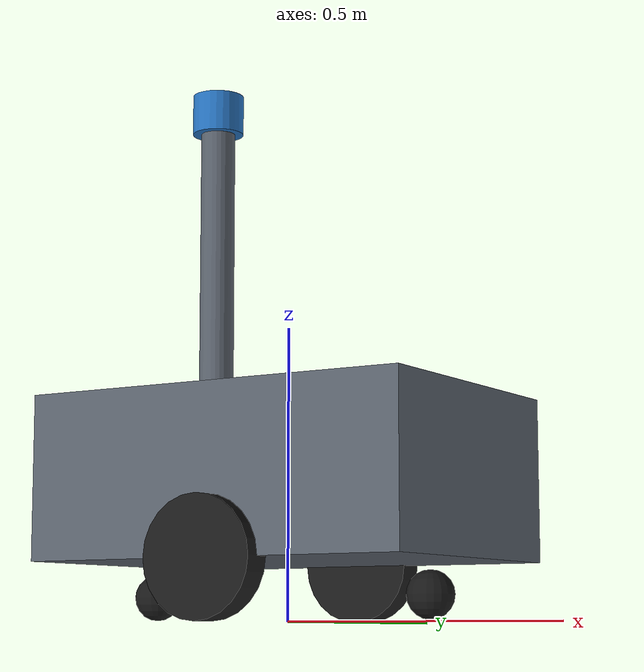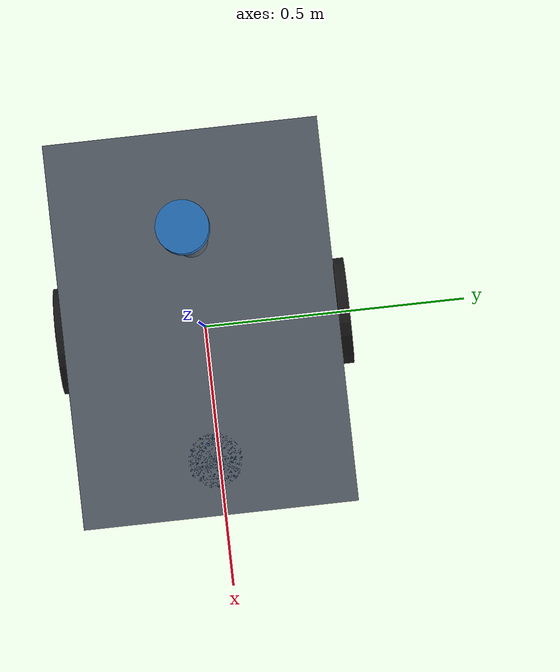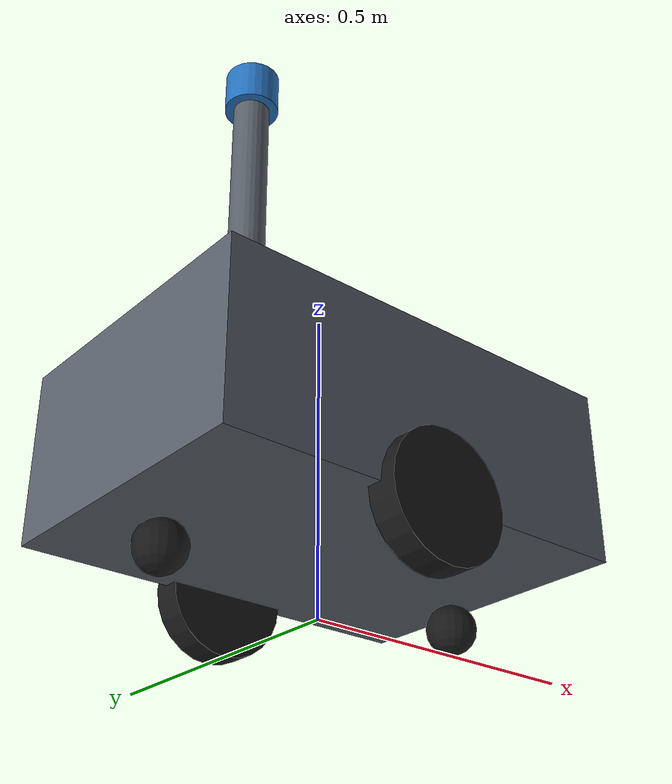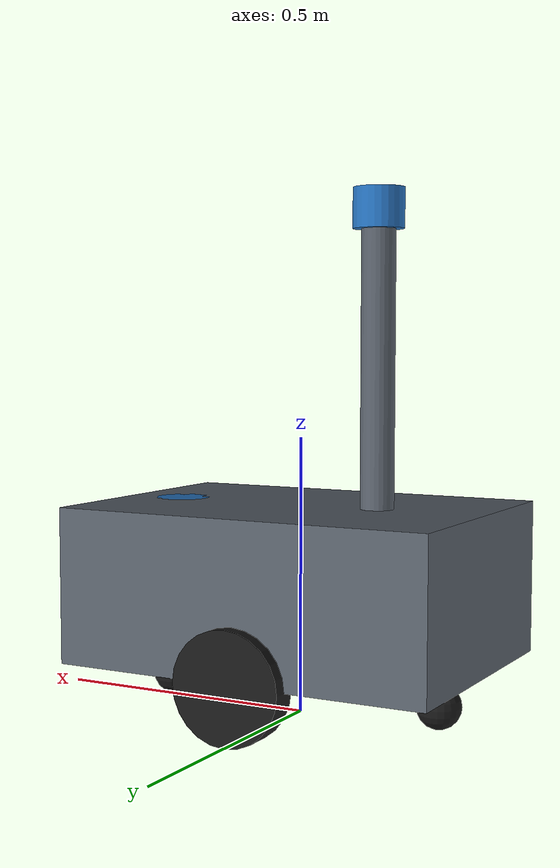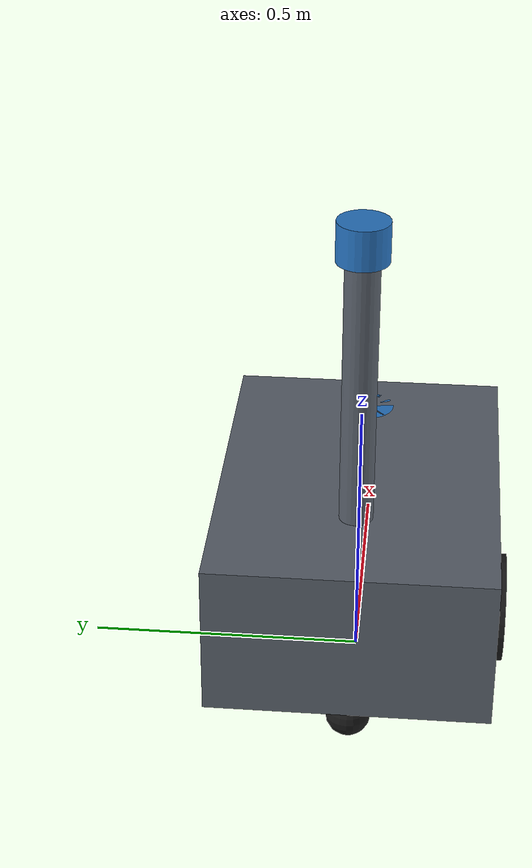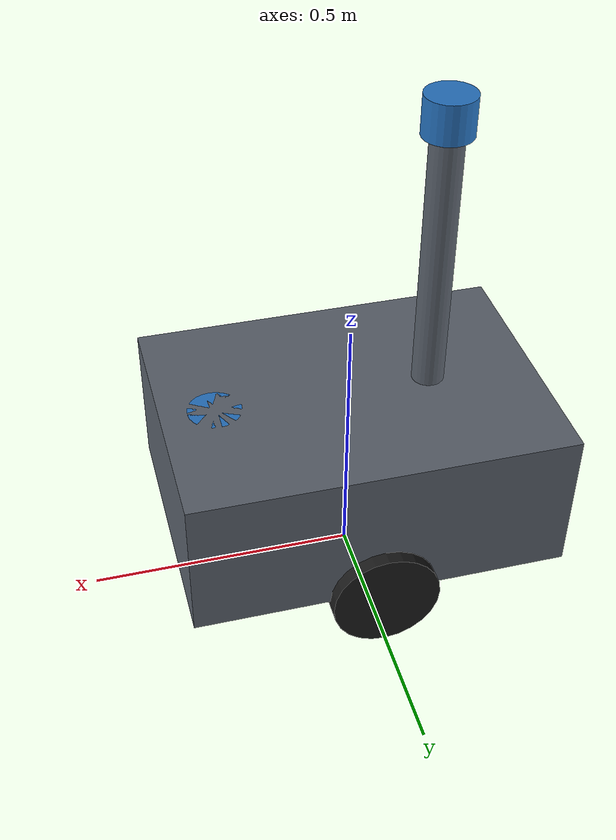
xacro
<?xml version="1.0"?>
<robot name="warehouse_amr" xmlns:xacro="http://www.ros.org/wiki/xacro">

  <xacro:arg name="use_gazebo" default="true"/>
  <xacro:arg name="scan_topic" default="scan"/>

  <!-- Body: 0.70 x 0.50 x 0.28 m chassis, 65 kg laden. -->
  <xacro:property name="base_length" value="0.70"/>
  <xacro:property name="base_width"  value="0.50"/>
  <xacro:property name="base_height" value="0.28"/>
  <xacro:property name="base_mass"   value="65.0"/>

  <xacro:property name="wheel_radius"    value="0.10"/>
  <xacro:property name="wheel_width"     value="0.05"/>
  <xacro:property name="wheel_contact_width" value="0.004"/>
  <xacro:property name="wheel_mass"      value="2.0"/>
  <xacro:property name="wheel_separation" value="0.50"/>

  <xacro:property name="caster_radius" value="0.04"/>
  <xacro:property name="caster_mass"   value="0.5"/>

  <xacro:property name="caster_clearance" value="0.003"/>

  <xacro:property name="lidar_2d_height" value="0.35"/>
  <xacro:property name="lidar_3d_height" value="0.90"/>

  <xacro:macro name="box_inertia" params="m x y z">
    <inertial>
      <mass value="${m}"/>
      <inertia ixx="${m*(y*y+z*z)/12.0}" ixy="0.0" ixz="0.0"
               iyy="${m*(x*x+z*z)/12.0}" iyz="0.0"
               izz="${m*(x*x+y*y)/12.0}"/>
    </inertial>
  </xacro:macro>

  <xacro:macro name="cylinder_inertia" params="m r h">
    <inertial>
      <mass value="${m}"/>
      <inertia ixx="${m*(3.0*r*r+h*h)/12.0}" ixy="0.0" ixz="0.0"
               iyy="${m*(3.0*r*r+h*h)/12.0}" iyz="0.0"
               izz="${m*r*r/2.0}"/>
    </inertial>
  </xacro:macro>

  <xacro:macro name="sphere_inertia" params="m r">
    <inertial>
      <mass value="${m}"/>
      <inertia ixx="${2.0*m*r*r/5.0}" ixy="0.0" ixz="0.0"
               iyy="${2.0*m*r*r/5.0}" iyz="0.0"
               izz="${2.0*m*r*r/5.0}"/>
    </inertial>
  </xacro:macro>

  <link name="base_footprint"/>

  <joint name="base_footprint_joint" type="fixed">
    <parent link="base_footprint"/>
    <child link="base_link"/>
    <origin xyz="0 0 ${wheel_radius}" rpy="0 0 0"/>
  </joint>

  <link name="base_link">
    <visual>
      <origin xyz="0 0 ${base_height/2.0}" rpy="0 0 0"/>
      <geometry><box size="${base_length} ${base_width} ${base_height}"/></geometry>
      <material name="amr_grey"><color rgba="0.35 0.38 0.42 1.0"/></material>
    </visual>
    <collision>
      <origin xyz="0 0 ${base_height/2.0}" rpy="0 0 0"/>
      <geometry><box size="${base_length} ${base_width} ${base_height}"/></geometry>
    </collision>
    <xacro:box_inertia m="${base_mass}" x="${base_length}" y="${base_width}" z="${base_height}"/>
  </link>

  <!-- Drive wheels -->
  <xacro:macro name="drive_wheel" params="prefix reflect">
    <link name="${prefix}_wheel_link">
      <visual>
        <origin xyz="0 0 0" rpy="${pi/2.0} 0 0"/>
        <geometry><cylinder radius="${wheel_radius}" length="${wheel_width}"/></geometry>
        <material name="amr_black"><color rgba="0.1 0.1 0.1 1.0"/></material>
      </visual>
      <collision>
        <origin xyz="0 0 0" rpy="${pi/2.0} 0 0"/>
        <geometry><cylinder radius="${wheel_radius}" length="${wheel_contact_width}"/></geometry>
      </collision>
      <xacro:cylinder_inertia m="${wheel_mass}" r="${wheel_radius}" h="${wheel_width}"/>
    </link>

    <joint name="${prefix}_wheel_joint" type="continuous">
      <parent link="base_link"/>
      <child link="${prefix}_wheel_link"/>
      <origin xyz="0 ${reflect * wheel_separation / 2.0} 0" rpy="0 0 0"/>
      <axis xyz="0 1 0"/>
      <limit effort="25.0" velocity="30.0"/>
      <dynamics damping="0.05" friction="0.1"/>
    </joint>

    <gazebo reference="${prefix}_wheel_link">
      <!-- High friction along the rolling direction, lower across it. Setting
           both high makes the base resist yaw and understeer; setting both low
           makes it slip constantly. -->
      <mu1>1.0</mu1>
      <mu2>0.8</mu2>
      <kp>1000000.0</kp>
      <kd>100.0</kd>
    </gazebo>
  </xacro:macro>

  <xacro:drive_wheel prefix="left"  reflect="1"/>
  <xacro:drive_wheel prefix="right" reflect="-1"/>

  <!-- Casters. Modelled as low-friction spheres, which is the standard way to
       avoid simulating a swivel joint that adds nothing but instability. -->
  <xacro:macro name="caster" params="prefix x">
    <link name="${prefix}_caster_link">
      <visual>
        <geometry><sphere radius="${caster_radius}"/></geometry>
        <material name="amr_black"><color rgba="0.1 0.1 0.1 1.0"/></material>
      </visual>
      <collision><geometry><sphere radius="${caster_radius}"/></geometry></collision>
      <xacro:sphere_inertia m="${caster_mass}" r="${caster_radius}"/>
    </link>
    <joint name="${prefix}_caster_joint" type="fixed">
      <parent link="base_link"/>
      <child link="${prefix}_caster_link"/>
      <origin xyz="${x} 0 ${caster_radius - wheel_radius + caster_clearance}" rpy="0 0 0"/>
    </joint>
    <gazebo reference="${prefix}_caster_link">
      <mu1>0.02</mu1>
      <mu2>0.02</mu2>
    </gazebo>
  </xacro:macro>

  <xacro:caster prefix="front" x="${base_length/2.0 - 0.08}"/>
  <xacro:caster prefix="rear"  x="${-base_length/2.0 + 0.08}"/>

  <!-- Sensors                                                              -->

  <link name="lidar_2d_link">
    <visual>
      <geometry><cylinder radius="0.05" length="0.06"/></geometry>
      <material name="amr_blue"><color rgba="0.15 0.45 0.75 1.0"/></material>
    </visual>
    <collision><geometry><cylinder radius="0.05" length="0.06"/></geometry></collision>
    <xacro:cylinder_inertia m="0.2" r="0.05" h="0.06"/>
  </link>
  <joint name="lidar_2d_joint" type="fixed">
    <parent link="base_link"/>
    <child link="lidar_2d_link"/>
    <origin xyz="${base_length/2.0 - 0.10} 0 ${lidar_2d_height - wheel_radius}" rpy="0 0 0"/>
  </joint>

  <link name="mast_link">
    <visual>
      <origin xyz="0 0 ${(lidar_3d_height - base_height)/2.0}"/>
      <geometry><cylinder radius="0.03" length="${lidar_3d_height - base_height}"/></geometry>
      <material name="amr_grey"><color rgba="0.35 0.38 0.42 1.0"/></material>
    </visual>
    <xacro:cylinder_inertia m="1.0" r="0.03" h="${lidar_3d_height - base_height}"/>
  </link>
  <joint name="mast_joint" type="fixed">
    <parent link="base_link"/>
    <child link="mast_link"/>
    <origin xyz="-0.15 0 ${base_height - wheel_radius}" rpy="0 0 0"/>
  </joint>

  <link name="lidar_3d_link">
    <visual>
      <geometry><cylinder radius="0.045" length="0.07"/></geometry>
      <material name="amr_blue"><color rgba="0.15 0.45 0.75 1.0"/></material>
    </visual>
    <collision><geometry><cylinder radius="0.045" length="0.07"/></geometry></collision>
    <xacro:cylinder_inertia m="0.5" r="0.045" h="0.07"/>
  </link>
  <joint name="lidar_3d_joint" type="fixed">
    <parent link="base_link"/>
    <child link="lidar_3d_link"/>
    <origin xyz="-0.15 0 ${lidar_3d_height - wheel_radius}" rpy="0 0 0"/>
  </joint>

  <link name="imu_link">
    <xacro:box_inertia m="0.05" x="0.02" y="0.02" z="0.01"/>
  </link>
  <joint name="imu_joint" type="fixed">
    <parent link="base_link"/>
    <child link="imu_link"/>
    <!-- Mounted at the base origin, not on the mast. An IMU on a compliant mast
         reads the mast's own oscillation as body acceleration. -->
    <origin xyz="0 0 0.02" rpy="0 0 0"/>
  </joint>

  <xacro:if value="$(arg use_gazebo)">
    <xacro:include filename="$(find amr_description)/urdf/amr.gazebo.xacro"/>
  </xacro:if>

</robot>
